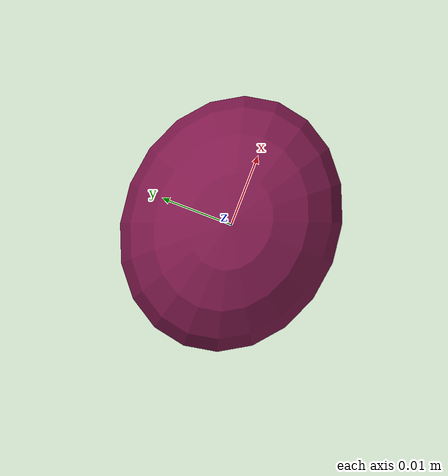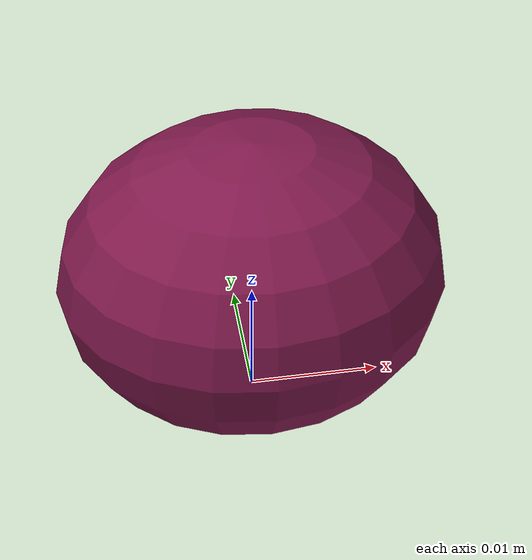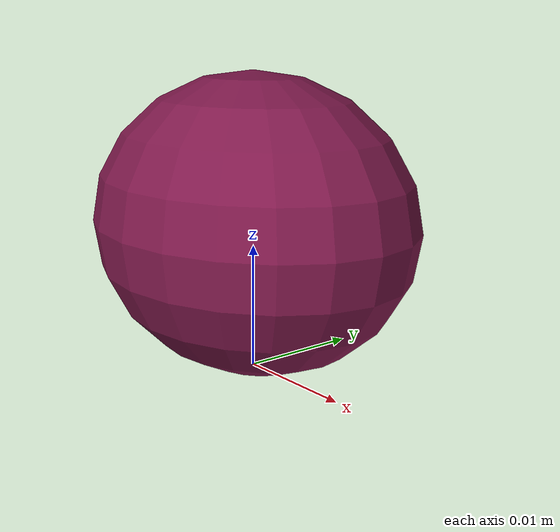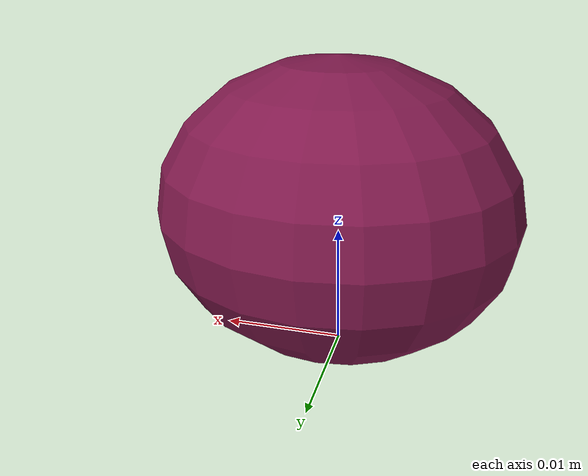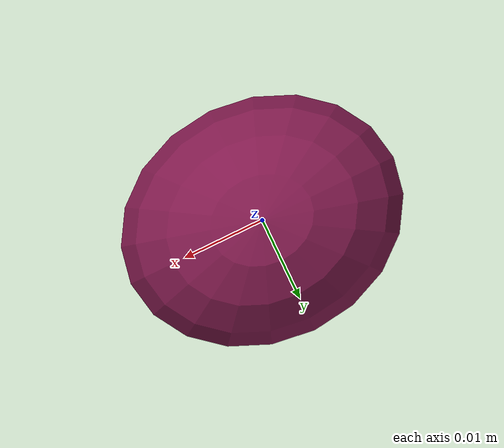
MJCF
<mujoco model="grape_simulation">
    <compiler angle="radian" autolimits="true"/>

    <worldbody>
        <body name="grape" pos="0 0 0.012">
            <freejoint name="grape_free"/>
            <inertial pos="0 0 0" mass="0.0055" diaginertia="3.168e-7 3.86496e-7 3.86496e-7"/>
            <!-- Size represents radii along X, Y, and Z axes (ellipsoid) -->
            <geom type="ellipsoid" name="grape_geom" size="0.0144 0.012 0.012" rgba="0.5 0.1 0.3 1" friction="0.6 0.005 0.0002"/>
        </body>
    </worldbody>
</mujoco>
